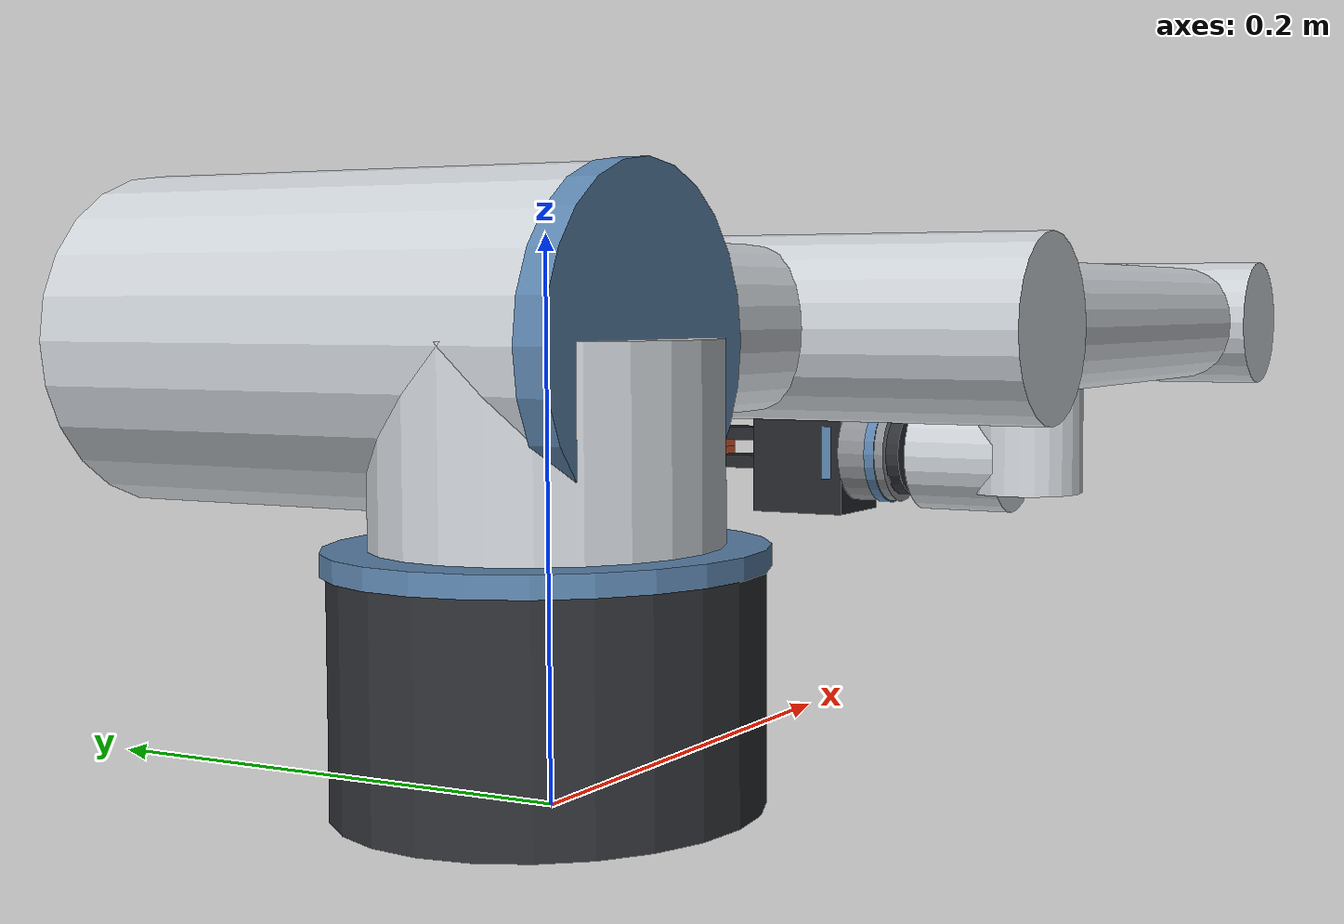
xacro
<?xml version="1.0"?>
<robot xmlns:xacro="http://www.ros.org/wiki/xacro" name="harness_cell">

  <!-- ===================== parameters (keep in sync with harness_core/config.py) -->
  <xacro:property name="d1" value="0.1625"/>
  <xacro:property name="a2" value="-0.425"/>
  <xacro:property name="a3" value="-0.3922"/>
  <xacro:property name="d4" value="0.1333"/>
  <xacro:property name="d5" value="0.0997"/>
  <xacro:property name="d6" value="0.0996"/>
  <xacro:property name="ft_thickness" value="0.0375"/>
  <xacro:property name="tcp_offset" value="0.17"/>
  <xacro:property name="house_len" value="0.075"/>
  <xacro:property name="finger_stroke" value="0.03"/>
  <xacro:property name="pad_w" value="0.010"/>
  <xacro:property name="pad_t" value="0.003"/>
  <xacro:property name="pad_h" value="0.012"/>
  <!-- finger geometry derived like in scene.py -->
  <xacro:property name="tcp_g" value="${tcp_offset - ft_thickness}"/>
  <xacro:property name="pad_center_z" value="${tcp_g + 0.006 - pad_h}"/>
  <xacro:property name="finger_len" value="${pad_center_z - house_len}"/>

  <!-- ===================== materials -->
  <material name="ur_light"><color rgba="0.80 0.82 0.84 1"/></material>
  <material name="ur_cap"><color rgba="0.36 0.52 0.68 1"/></material>
  <material name="ur_dark"><color rgba="0.18 0.19 0.21 1"/></material>
  <material name="ft_grey"><color rgba="0.55 0.56 0.58 1"/></material>
  <material name="gripper_black"><color rgba="0.14 0.15 0.17 1"/></material>
  <material name="pad_orange"><color rgba="0.85 0.35 0.20 1"/></material>

  <xacro:macro name="cyl" params="r l xyz rpy:='0 0 0' mat">
    <visual>
      <origin xyz="${xyz}" rpy="${rpy}"/>
      <geometry><cylinder radius="${r}" length="${l}"/></geometry>
      <material name="${mat}"/>
    </visual>
  </xacro:macro>

  <xacro:macro name="inertial" params="m xyz ixx iyy izz">
    <inertial>
      <origin xyz="${xyz}"/>
      <mass value="${m}"/>
      <inertia ixx="${ixx}" iyy="${iyy}" izz="${izz}" ixy="0" ixz="0" iyz="0"/>
    </inertial>
  </xacro:macro>

  <!-- ===================== links -->
  <link name="world"/>

  <link name="base_link">
    <xacro:cyl r="0.076" l="0.086" xyz="0 0 0.043" mat="ur_dark"/>
    <xacro:cyl r="0.078" l="0.008" xyz="0 0 0.088" mat="ur_cap"/>
    <xacro:inertial m="4.0" xyz="0 0 0.04" ixx="0.0044" iyy="0.0044" izz="0.0072"/>
  </link>

  <!-- UR controller base frame (base_link rotated by pi about z), as in ur_description -->
  <link name="base"/>

  <link name="shoulder_link">
    <xacro:cyl r="0.062" l="0.072" xyz="0 0 0.128" mat="ur_light"/>
    <xacro:inertial m="3.761" xyz="0 0 0.12" ixx="0.0103" iyy="0.0103" izz="0.0067"/>
  </link>

  <link name="upper_arm_link">
    <xacro:cyl r="0.062" l="0.21" xyz="0 0 0.07" mat="ur_light"/>
    <xacro:cyl r="0.063" l="0.012" xyz="0 0 -0.036" mat="ur_cap"/>
    <xacro:cyl r="0.046" l="0.365" xyz="-0.2125 0 0.138" rpy="0 ${pi/2} 0" mat="ur_light"/>
    <xacro:cyl r="0.052" l="0.21" xyz="${a2} 0 0.074" mat="ur_light"/>
    <xacro:cyl r="0.053" l="0.012" xyz="${a2} 0 0.179" mat="ur_cap"/>
    <xacro:inertial m="8.058" xyz="-0.2125 0 0.138" ixx="0.0151" iyy="0.1339" izz="0.1339"/>
  </link>

  <link name="forearm_link">
    <xacro:cyl r="0.038" l="0.33" xyz="-0.195 0 0.007" rpy="0 ${pi/2} 0" mat="ur_light"/>
    <xacro:cyl r="0.042" l="0.12" xyz="${a3} 0 0.02" mat="ur_light"/>
    <xacro:inertial m="2.846" xyz="-0.1961 0 0.007" ixx="0.0041" iyy="0.0311" izz="0.0311"/>
  </link>

  <link name="wrist_1_link">
    <xacro:cyl r="0.042" l="0.10" xyz="0 0 0.105" mat="ur_light"/>
    <xacro:cyl r="0.043" l="0.010" xyz="0 0 0.16" mat="ur_cap"/>
    <xacro:inertial m="1.37" xyz="0 0 0.12" ixx="0.0026" iyy="0.0026" izz="0.0022"/>
  </link>

  <link name="wrist_2_link">
    <xacro:cyl r="0.042" l="0.096" xyz="0 0 0.078" mat="ur_light"/>
    <xacro:cyl r="0.043" l="0.010" xyz="0 0 0.03" mat="ur_cap"/>
    <xacro:inertial m="1.3" xyz="0 0 0.08" ixx="0.0026" iyy="0.0026" izz="0.0022"/>
  </link>

  <link name="wrist_3_link">
    <xacro:cyl r="0.042" l="0.07" xyz="0 0 0.045" mat="ur_light"/>
    <xacro:cyl r="0.032" l="0.010" xyz="0 0 ${d6 - 0.005}" mat="ur_dark"/>
    <xacro:inertial m="0.365" xyz="0 0 0.07" ixx="0.0002" iyy="0.0002" izz="0.0003"/>
  </link>

  <link name="tool0"/>

  <link name="ft_sensor_link">
    <xacro:cyl r="0.0375" l="${ft_thickness}" xyz="0 0 ${ft_thickness / 2}" mat="ft_grey"/>
    <xacro:cyl r="0.0385" l="0.008" xyz="0 0 ${ft_thickness * 0.3}" mat="ur_cap"/>
    <xacro:inertial m="0.3" xyz="0 0 ${ft_thickness / 2}" ixx="0.0002" iyy="0.0002" izz="0.0003"/>
  </link>

  <!-- measurement frame of the F/T sensor (tool side), wrench is published here -->
  <link name="ft_frame"/>

  <link name="gripper_base_link">
    <visual>
      <origin xyz="0 0 ${house_len / 2}"/>
      <geometry><box size="0.064 0.094 ${house_len}"/></geometry>
      <material name="gripper_black"/>
    </visual>
    <visual>
      <origin xyz="0 0 0.012"/>
      <geometry><box size="0.066 0.040 0.008"/></geometry>
      <material name="ur_cap"/>
    </visual>
    <collision>
      <origin xyz="0 0 ${house_len / 2}"/>
      <geometry><box size="0.064 0.094 ${house_len}"/></geometry>
    </collision>
    <xacro:inertial m="0.55" xyz="0 0 0.035" ixx="0.0012" iyy="0.0010" izz="0.0006"/>
  </link>

  <xacro:macro name="finger" params="side sgn">
    <link name="finger_${side}_link">
      <visual>
        <origin xyz="0 ${sgn * (pad_t * 2 + 0.005)} ${finger_len / 2}"/>
        <geometry><box size="${2 * pad_w} 0.010 ${finger_len}"/></geometry>
        <material name="gripper_black"/>
      </visual>
      <visual>
        <origin xyz="0 ${sgn * pad_t} ${finger_len}"/>
        <geometry><box size="${2 * pad_w} ${2 * pad_t} ${2 * pad_h}"/></geometry>
        <material name="pad_orange"/>
      </visual>
      <collision>
        <origin xyz="0 ${sgn * pad_t} ${finger_len}"/>
        <geometry><box size="${2 * pad_w} ${2 * pad_t} ${2 * pad_h}"/></geometry>
      </collision>
      <xacro:inertial m="0.05" xyz="0 ${sgn * 0.008} ${finger_len / 2}" ixx="2e-5" iyy="2e-5" izz="5e-6"/>
    </link>
  </xacro:macro>
  <xacro:finger side="left" sgn="1"/>
  <xacro:finger side="right" sgn="-1"/>

  <!-- tool centre point: between the finger pads -->
  <link name="tcp"/>

  <!-- ===================== joints -->
  <joint name="world_joint" type="fixed">
    <parent link="world"/>
    <child link="base_link"/>
    <origin xyz="0 0 0" rpy="0 0 0"/>
  </joint>

  <joint name="base_link-base_fixed_joint" type="fixed">
    <parent link="base_link"/>
    <child link="base"/>
    <origin xyz="0 0 0" rpy="0 0 ${pi}"/>
  </joint>

  <joint name="shoulder_pan_joint" type="revolute">
    <parent link="base_link"/>
    <child link="shoulder_link"/>
    <origin xyz="0 0 0" rpy="0 0 ${pi}"/>
    <axis xyz="0 0 1"/>
    <limit lower="${-2 * pi}" upper="${2 * pi}" effort="150" velocity="3.14"/>
  </joint>

  <joint name="shoulder_lift_joint" type="revolute">
    <parent link="shoulder_link"/>
    <child link="upper_arm_link"/>
    <origin xyz="0 0 ${d1}" rpy="${pi / 2} 0 0"/>
    <axis xyz="0 0 1"/>
    <limit lower="${-2 * pi}" upper="${2 * pi}" effort="150" velocity="3.14"/>
  </joint>

  <joint name="elbow_joint" type="revolute">
    <parent link="upper_arm_link"/>
    <child link="forearm_link"/>
    <origin xyz="${a2} 0 0" rpy="0 0 0"/>
    <axis xyz="0 0 1"/>
    <limit lower="${-pi}" upper="${pi}" effort="150" velocity="3.14"/>
  </joint>

  <joint name="wrist_1_joint" type="revolute">
    <parent link="forearm_link"/>
    <child link="wrist_1_link"/>
    <origin xyz="${a3} 0 0" rpy="0 0 0"/>
    <axis xyz="0 0 1"/>
    <limit lower="${-2 * pi}" upper="${2 * pi}" effort="28" velocity="3.14"/>
  </joint>

  <joint name="wrist_2_joint" type="revolute">
    <parent link="wrist_1_link"/>
    <child link="wrist_2_link"/>
    <origin xyz="0 0 ${d4}" rpy="${pi / 2} 0 0"/>
    <axis xyz="0 0 1"/>
    <limit lower="${-2 * pi}" upper="${2 * pi}" effort="28" velocity="3.14"/>
  </joint>

  <joint name="wrist_3_joint" type="revolute">
    <parent link="wrist_2_link"/>
    <child link="wrist_3_link"/>
    <origin xyz="0 0 ${d5}" rpy="${-pi / 2} 0 0"/>
    <axis xyz="0 0 1"/>
    <limit lower="${-2 * pi}" upper="${2 * pi}" effort="28" velocity="3.14"/>
  </joint>

  <joint name="wrist_3-tool0_fixed_joint" type="fixed">
    <parent link="wrist_3_link"/>
    <child link="tool0"/>
    <origin xyz="0 0 ${d6}" rpy="0 0 0"/>
  </joint>

  <joint name="tool0-ft_sensor_fixed_joint" type="fixed">
    <parent link="tool0"/>
    <child link="ft_sensor_link"/>
    <origin xyz="0 0 0" rpy="0 0 0"/>
  </joint>

  <joint name="ft_sensor-ft_frame_fixed_joint" type="fixed">
    <parent link="ft_sensor_link"/>
    <child link="ft_frame"/>
    <origin xyz="0 0 ${ft_thickness}" rpy="0 0 0"/>
  </joint>

  <joint name="ft_frame-gripper_fixed_joint" type="fixed">
    <parent link="ft_frame"/>
    <child link="gripper_base_link"/>
    <origin xyz="0 0 0" rpy="0 0 0"/>
  </joint>

  <joint name="finger_left_joint" type="prismatic">
    <parent link="gripper_base_link"/>
    <child link="finger_left_link"/>
    <origin xyz="0 0 ${house_len}" rpy="0 0 0"/>
    <axis xyz="0 1 0"/>
    <limit lower="0" upper="${finger_stroke}" effort="30" velocity="0.075"/>
  </joint>

  <joint name="finger_right_joint" type="prismatic">
    <parent link="gripper_base_link"/>
    <child link="finger_right_link"/>
    <origin xyz="0 0 ${house_len}" rpy="0 0 0"/>
    <axis xyz="0 -1 0"/>
    <limit lower="0" upper="${finger_stroke}" effort="30" velocity="0.075"/>
    <mimic joint="finger_left_joint" multiplier="1" offset="0"/>
  </joint>

  <joint name="gripper-tcp_fixed_joint" type="fixed">
    <parent link="gripper_base_link"/>
    <child link="tcp"/>
    <origin xyz="0 0 ${tcp_g}" rpy="0 0 0"/>
  </joint>
</robot>
